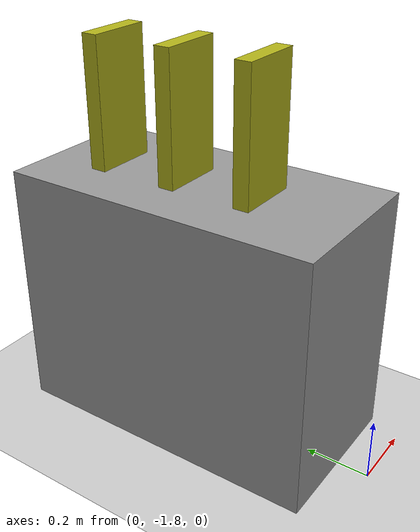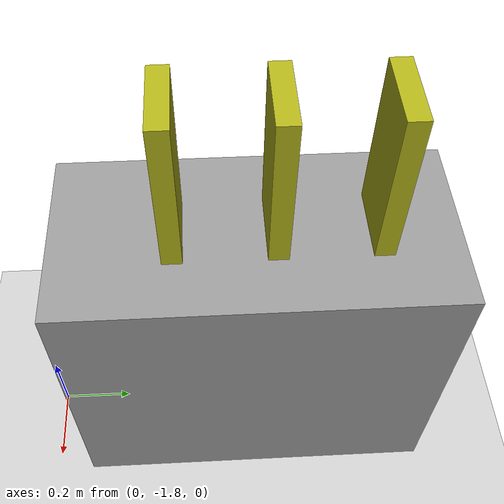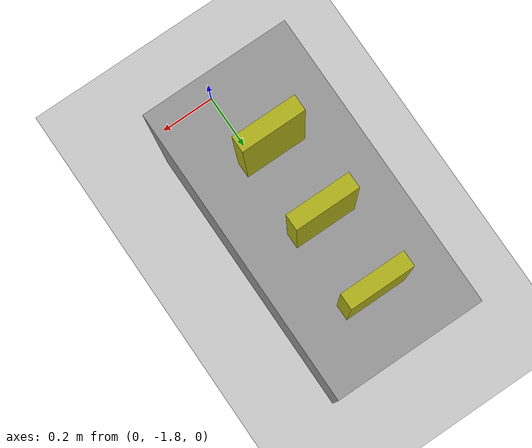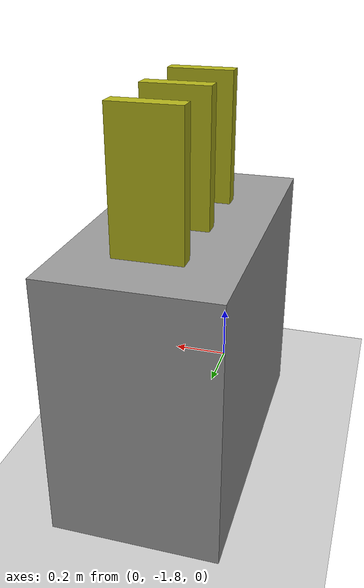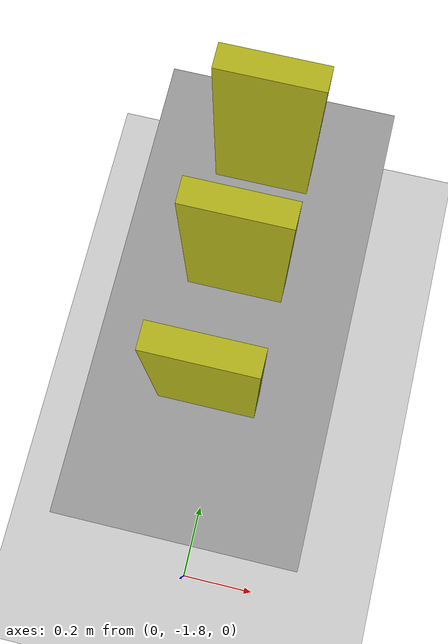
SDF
<sdf version="1.5">
 <world name="default">
  <model name="ground_plane">
   <static>1</static>
   <link name="link">
    <collision name="collision">
     <geometry><plane><normal>0 0 1</normal><size>100 100</size></plane></geometry>
     <surface><friction><ode><mu>100</mu><mu2>50</mu2></ode></friction></surface>
    </collision>
    <visual name="visual">
     <cast_shadows>0</cast_shadows>
     <geometry><plane><normal>0 0 1</normal><size>100 100</size></plane></geometry>
     <material>
      <script><uri>file://media/materials/scripts/gazebo.material</uri><name>Gazebo/Grey</name></script>
     </material>
    </visual>
   </link>
  </model>
  <model name="table">
   <link name="link_0">
    <inertial>
     <mass>1</mass>
     <inertia><ixx>1</ixx><ixy>0</ixy><ixz>0</ixz><iyy>1</iyy><iyz>0</iyz><izz>1</izz></inertia>
    </inertial>
    <visual name="visual">
     <geometry><box><size>0.5 1 0.8</size></box></geometry>
     <material>
      <lighting>1</lighting>
      <script><uri>file://media/materials/scripts/gazebo.material</uri><name>Gazebo/Grey</name></script>
      <shader type="pixel"><normal_map>__default__</normal_map></shader>
      <ambient>0.3 0.3 0.3 1</ambient>
      <diffuse>0.7 0.7 0.7 1</diffuse>
      <specular>0.01 0.01 0.01 1</specular>
      <emissive>0 0 0 1</emissive>
     </material>
    </visual>
    <collision name="collision">
     <geometry><box><size>0.5 1 0.8</size></box></geometry>
     <surface>
      <friction><ode><mu>1</mu><mu2>1</mu2><fdir1>0 0 0</fdir1><slip1>0</slip1><slip2>0</slip2></ode></friction>
      <bounce><restitution_coefficient>0</restitution_coefficient><threshold>1e+06</threshold></bounce>
      <contact>
       <collide_without_contact>0</collide_without_contact>
       <collide_without_contact_bitmask>1</collide_without_contact_bitmask>
       <collide_bitmask>1</collide_bitmask>
       <ode>
        <soft_cfm>0</soft_cfm>
        <soft_erp>0.2</soft_erp>
        <kp>1e+13</kp>
        <kd>1</kd>
        <max_vel>0.01</max_vel>
        <min_depth>0</min_depth>
       </ode>
       <bullet>
        <split_impulse>1</split_impulse>
        <split_impulse_penetration_threshold>-0.01</split_impulse_penetration_threshold>
        <soft_cfm>0</soft_cfm>
        <soft_erp>0.2</soft_erp>
        <kp>1e+13</kp>
        <kd>1</kd>
       </bullet>
      </contact>
     </surface>
    </collision>
   </link>
   <static>0</static>
   <pose>0 -1.2 0.4 0 -0 0</pose>
  </model>
  <model name="domino020">
   <link name="link">
    <inertial>
     <mass>1</mass>
     <inertia>
      <ixx>0.166667</ixx>
      <ixy>0</ixy>
      <ixz>0</ixz>
      <iyy>0.166667</iyy>
      <iyz>0</iyz>
      <izz>0.166667</izz>
     </inertia>
    </inertial>
    <visual name="visual">
     <geometry><box><size>0.2 0.05 0.4</size></box></geometry>
     <material>
      <script><name>Gazebo/Grey</name><uri>file://media/materials/scripts/gazebo.material</uri></script>
      <shader type="pixel"><normal_map>__default__</normal_map></shader>
      <ambient>0.3 0.3 0.3 1</ambient>
      <diffuse>0.7 0.7 0.1 1</diffuse>
      <specular>0.01 0.01 0.01 1</specular>
      <emissive>0 0 0 1</emissive>
     </material>
    </visual>
    <collision name="collision">
     <geometry><box><size>0.2 0.05 0.4</size></box></geometry>
     <surface>
      <friction><ode><mu>1</mu><mu2>1</mu2><fdir1>0 0 0</fdir1><slip1>0</slip1><slip2>0</slip2></ode></friction>
      <bounce><restitution_coefficient>0</restitution_coefficient><threshold>1e+06</threshold></bounce>
      <contact>
       <collide_without_contact>0</collide_without_contact>
       <collide_without_contact_bitmask>1</collide_without_contact_bitmask>
       <collide_bitmask>1</collide_bitmask>
       <ode>
        <soft_cfm>0</soft_cfm>
        <soft_erp>0.2</soft_erp>
        <kp>1e+13</kp>
        <kd>1</kd>
        <max_vel>0.01</max_vel>
        <min_depth>0</min_depth>
       </ode>
       <bullet>
        <split_impulse>1</split_impulse>
        <split_impulse_penetration_threshold>-0.01</split_impulse_penetration_threshold>
        <soft_cfm>0</soft_cfm>
        <soft_erp>0.2</soft_erp>
        <kp>1e+13</kp>
        <kd>1</kd>
       </bullet>
      </contact>
     </surface>
    </collision>
   </link>
   <static>0</static>
   <pose>0 -0.9 1 0 -0 0</pose>
  </model>
  <model name="domino020_0">
   <link name="link">
    <inertial>
     <mass>1</mass>
     <inertia>
      <ixx>0.166667</ixx>
      <ixy>0</ixy>
      <ixz>0</ixz>
      <iyy>0.166667</iyy>
      <iyz>0</iyz>
      <izz>0.166667</izz>
     </inertia>
    </inertial>
    <visual name="visual">
     <geometry><box><size>0.2 0.05 0.4</size></box></geometry>
     <material>
      <script><name>Gazebo/Grey</name><uri>file://media/materials/scripts/gazebo.material</uri></script>
      <shader type="pixel"><normal_map>__default__</normal_map></shader>
      <ambient>0.3 0.3 0.3 1</ambient>
      <diffuse>0.7 0.7 0.1 1</diffuse>
      <specular>0.01 0.01 0.01 1</specular>
      <emissive>0 0 0 1</emissive>
     </material>
    </visual>
    <collision name="collision">
     <geometry><box><size>0.2 0.05 0.4</size></box></geometry>
     <surface>
      <friction><ode><mu>1</mu><mu2>1</mu2><fdir1>0 0 0</fdir1><slip1>0</slip1><slip2>0</slip2></ode></friction>
      <bounce><restitution_coefficient>0</restitution_coefficient><threshold>1e+06</threshold></bounce>
      <contact>
       <collide_without_contact>0</collide_without_contact>
       <collide_without_contact_bitmask>1</collide_without_contact_bitmask>
       <collide_bitmask>1</collide_bitmask>
       <ode>
        <soft_cfm>0</soft_cfm>
        <soft_erp>0.2</soft_erp>
        <kp>1e+13</kp>
        <kd>1</kd>
        <max_vel>0.01</max_vel>
        <min_depth>0</min_depth>
       </ode>
       <bullet>
        <split_impulse>1</split_impulse>
        <split_impulse_penetration_threshold>-0.01</split_impulse_penetration_threshold>
        <soft_cfm>0</soft_cfm>
        <soft_erp>0.2</soft_erp>
        <kp>1e+13</kp>
        <kd>1</kd>
       </bullet>
      </contact>
     </surface>
    </collision>
   </link>
   <static>0</static>
   <pose>0 -1.15 1 0 -0 0</pose>
  </model>
  <model name="domino020_2">
   <link name="link">
    <inertial>
     <mass>1</mass>
     <inertia>
      <ixx>0.166667</ixx>
      <ixy>0</ixy>
      <ixz>0</ixz>
      <iyy>0.166667</iyy>
      <iyz>0</iyz>
      <izz>0.166667</izz>
     </inertia>
    </inertial>
    <visual name="visual">
     <geometry><box><size>0.2 0.05 0.4</size></box></geometry>
     <material>
      <script><name>Gazebo/Grey</name><uri>file://media/materials/scripts/gazebo.material</uri></script>
      <shader type="pixel"><normal_map>__default__</normal_map></shader>
      <ambient>0.3 0.3 0.3 1</ambient>
      <diffuse>0.7 0.7 0.1 1</diffuse>
      <specular>0.01 0.01 0.01 1</specular>
      <emissive>0 0 0 1</emissive>
     </material>
    </visual>
    <collision name="collision">
     <geometry><box><size>0.2 0.05 0.4</size></box></geometry>
     <surface>
      <friction><ode><mu>1</mu><mu2>1</mu2><fdir1>0 0 0</fdir1><slip1>0</slip1><slip2>0</slip2></ode></friction>
      <bounce><restitution_coefficient>0</restitution_coefficient><threshold>1e+06</threshold></bounce>
      <contact>
       <collide_without_contact>0</collide_without_contact>
       <collide_without_contact_bitmask>1</collide_without_contact_bitmask>
       <collide_bitmask>1</collide_bitmask>
       <ode>
        <soft_cfm>0</soft_cfm>
        <soft_erp>0.2</soft_erp>
        <kp>1e+13</kp>
        <kd>1</kd>
        <max_vel>0.01</max_vel>
        <min_depth>0</min_depth>
       </ode>
       <bullet>
        <split_impulse>1</split_impulse>
        <split_impulse_penetration_threshold>-0.01</split_impulse_penetration_threshold>
        <soft_cfm>0</soft_cfm>
        <soft_erp>0.2</soft_erp>
        <kp>1e+13</kp>
        <kd>1</kd>
       </bullet>
      </contact>
     </surface>
    </collision>
   </link>
   <static>0</static>
   <pose>0 -1.4 1 0 -0 0</pose>
  </model>
 </world>
</sdf>
